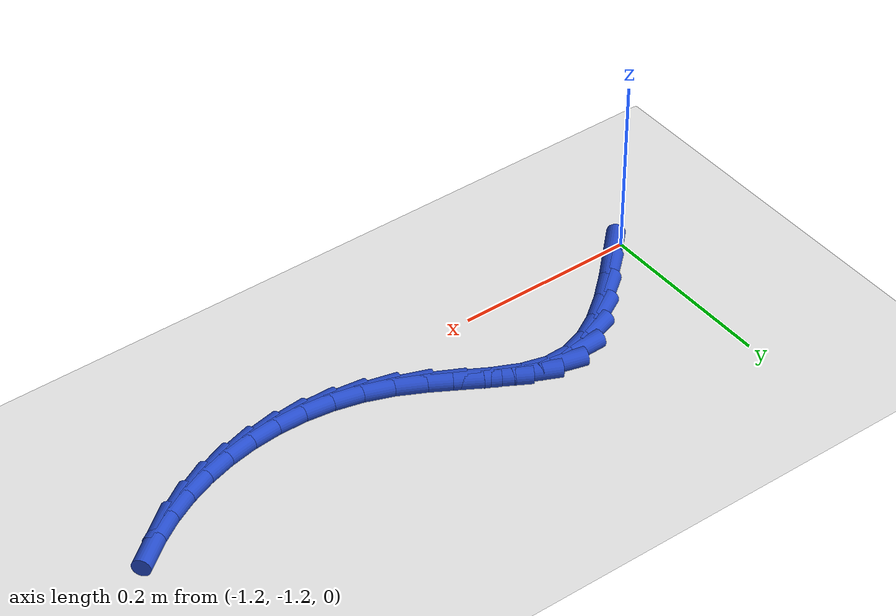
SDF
<sdf version="1.6">
 <world name="default">
  <model name="ground_plane">
   <static>1</static>
   <link name="link">
    <collision name="collision">
     <geometry><plane><normal>0 0 1</normal><size>100 100</size></plane></geometry>
     <surface><friction><ode><mu>100</mu><mu2>50</mu2></ode></friction></surface>
    </collision>
    <visual name="visual">
     <cast_shadows>0</cast_shadows>
     <geometry><plane><normal>0 0 1</normal><size>100 100</size></plane></geometry>
     <material>
      <script><uri>file://media/materials/scripts/gazebo.material</uri><name>Gazebo/WhiteGlow</name></script>
     </material>
    </visual>
   </link>
  </model>
  <model name="line">
   <link name="link_197">
    <pose>-1.1725462973427259 -1.1823438609646186 0.01 0 1.57 0.7769176367774766</pose>
    <collision name="collision">
     <geometry><cylinder><radius>0.01</radius><length>0.08</length></cylinder></geometry>
    </collision>
    <visual name="visual">
     <material>
      <script><name>Gazebo/Blue</name><uri>file://media/materials/scripts/gazebo.material</uri></script>
     </material>
     <geometry><cylinder><radius>0.01</radius><length>0.08</length></cylinder></geometry>
    </visual>
   </link>
   <link name="link_198">
    <pose>-1.1467645299513411 -1.156995712580293 0.01 0 1.57 0.7331379132344182</pose>
    <collision name="collision">
     <geometry><cylinder><radius>0.01</radius><length>0.08</length></cylinder></geometry>
    </collision>
    <visual name="visual">
     <material>
      <script><name>Gazebo/Blue</name><uri>file://media/materials/scripts/gazebo.material</uri></script>
     </material>
     <geometry><cylinder><radius>0.01</radius><length>0.08</length></cylinder></geometry>
    </visual>
   </link>
   <link name="link_199">
    <pose>-1.1207682063633124 -1.133583827577635 0.01 0 1.57 0.6516789785966732</pose>
    <collision name="collision">
     <geometry><cylinder><radius>0.01</radius><length>0.08</length></cylinder></geometry>
    </collision>
    <visual name="visual">
     <material>
      <script><name>Gazebo/Blue</name><uri>file://media/materials/scripts/gazebo.material</uri></script>
     </material>
     <geometry><cylinder><radius>0.01</radius><length>0.08</length></cylinder></geometry>
    </visual>
   </link>
   <link name="link_200">
    <pose>-1.094581846570997 -1.1136073779839863 0.01 0 1.57 0.5186776162170759</pose>
    <collision name="collision">
     <geometry><cylinder><radius>0.01</radius><length>0.08</length></cylinder></geometry>
    </collision>
    <visual name="visual">
     <material>
      <script><name>Gazebo/Blue</name><uri>file://media/materials/scripts/gazebo.material</uri></script>
     </material>
     <geometry><cylinder><radius>0.01</radius><length>0.08</length></cylinder></geometry>
    </visual>
   </link>
   <link name="link_201">
    <pose>-1.0682299705667528 -1.0985655358266877 0.01 0 1.57 0.3141594940497612</pose>
    <collision name="collision">
     <geometry><cylinder><radius>0.01</radius><length>0.08</length></cylinder></geometry>
    </collision>
    <visual name="visual">
     <material>
      <script><name>Gazebo/Blue</name><uri>file://media/materials/scripts/gazebo.material</uri></script>
     </material>
     <geometry><cylinder><radius>0.01</radius><length>0.08</length></cylinder></geometry>
    </visual>
   </link>
   <link name="link_202">
    <pose>-1.0417370983429366 -1.0899574731330806 0.01 0 1.57 0.026552235999757437</pose>
    <collision name="collision">
     <geometry><cylinder><radius>0.01</radius><length>0.08</length></cylinder></geometry>
    </collision>
    <visual name="visual">
     <material>
      <script><name>Gazebo/Blue</name><uri>file://media/materials/scripts/gazebo.material</uri></script>
     </material>
     <geometry><cylinder><radius>0.01</radius><length>0.08</length></cylinder></geometry>
    </visual>
   </link>
   <link name="link_203">
    <pose>-1.0151260289880946 -1.089250723640424 0.01 0 1.57 -0.2602488342536156</pose>
    <collision name="collision">
     <geometry><cylinder><radius>0.01</radius><length>0.08</length></cylinder></geometry>
    </collision>
    <visual name="visual">
     <material>
      <script><name>Gazebo/Blue</name><uri>file://media/materials/scripts/gazebo.material</uri></script>
     </material>
     <geometry><cylinder><radius>0.01</radius><length>0.08</length></cylinder></geometry>
    </visual>
   </link>
   <link name="link_204">
    <pose>-0.9883364300125059 -1.096384472452593 0.01 0 1.57 -0.43865839432295795</pose>
    <collision name="collision">
     <geometry><cylinder><radius>0.01</radius><length>0.08</length></cylinder></geometry>
    </collision>
    <visual name="visual">
     <material>
      <script><name>Gazebo/Blue</name><uri>file://media/materials/scripts/gazebo.material</uri></script>
     </material>
     <geometry><cylinder><radius>0.01</radius><length>0.08</length></cylinder></geometry>
    </visual>
   </link>
   <link name="link_205">
    <pose>-0.9611895193238175 -1.1091202449671993 0.01 0 1.57 -0.5220990378310564</pose>
    <collision name="collision">
     <geometry><cylinder><radius>0.01</radius><length>0.08</length></cylinder></geometry>
    </collision>
    <visual name="visual">
     <material>
      <script><name>Gazebo/Blue</name><uri>file://media/materials/scripts/gazebo.material</uri></script>
     </material>
     <geometry><cylinder><radius>0.01</radius><length>0.08</length></cylinder></geometry>
    </visual>
   </link>
   <link name="link_206">
    <pose>-0.9334974515607687 -1.1250529411558177 0.01 0 1.57 -0.531825739977138</pose>
    <collision name="collision">
     <geometry><cylinder><radius>0.01</radius><length>0.08</length></cylinder></geometry>
    </collision>
    <visual name="visual">
     <material>
      <script><name>Gazebo/Blue</name><uri>file://media/materials/scripts/gazebo.material</uri></script>
     </material>
     <geometry><cylinder><radius>0.01</radius><length>0.08</length></cylinder></geometry>
    </visual>
   </link>
   <link name="link_207">
    <pose>-0.9050723813621001 -1.141777460990024 0.01 0 1.57 -0.47552418243377503</pose>
    <collision name="collision">
     <geometry><cylinder><radius>0.01</radius><length>0.08</length></cylinder></geometry>
    </collision>
    <visual name="visual">
     <material>
      <script><name>Gazebo/Blue</name><uri>file://media/materials/scripts/gazebo.material</uri></script>
     </material>
     <geometry><cylinder><radius>0.01</radius><length>0.08</length></cylinder></geometry>
    </visual>
   </link>
   <link name="link_208">
    <pose>-0.875726463366552 -1.1568887044413925 0.01 0 1.57 -0.362028117882732</pose>
    <collision name="collision">
     <geometry><cylinder><radius>0.01</radius><length>0.08</length></cylinder></geometry>
    </collision>
    <visual name="visual">
     <material>
      <script><name>Gazebo/Blue</name><uri>file://media/materials/scripts/gazebo.material</uri></script>
     </material>
     <geometry><cylinder><radius>0.01</radius><length>0.08</length></cylinder></geometry>
    </visual>
   </link>
   <link name="link_209">
    <pose>-0.8453541928620919 -1.168391293265418 0.01 0 1.57 -0.24022454765128046</pose>
    <collision name="collision">
     <geometry><cylinder><radius>0.01</radius><length>0.08</length></cylinder></geometry>
    </collision>
    <visual name="visual">
     <material>
      <script><name>Gazebo/Blue</name><uri>file://media/materials/scripts/gazebo.material</uri></script>
     </material>
     <geometry><cylinder><radius>0.01</radius><length>0.08</length></cylinder></geometry>
    </visual>
   </link>
   <link name="link_210">
    <pose>-0.8141983828308821 -1.1760230557003706 0.01 0 1.57 -0.12455534353899324</pose>
    <collision name="collision">
     <geometry><cylinder><radius>0.01</radius><length>0.08</length></cylinder></geometry>
    </collision>
    <visual name="visual">
     <material>
      <script><name>Gazebo/Blue</name><uri>file://media/materials/scripts/gazebo.material</uri></script>
     </material>
     <geometry><cylinder><radius>0.01</radius><length>0.08</length></cylinder></geometry>
    </visual>
   </link>
   <link name="link_211">
    <pose>-0.782593934025546 -1.1799800428178895 0.01 0 1.57 -0.01507745232673124</pose>
    <collision name="collision">
     <geometry><cylinder><radius>0.01</radius><length>0.08</length></cylinder></geometry>
    </collision>
    <visual name="visual">
     <material>
      <script><name>Gazebo/Blue</name><uri>file://media/materials/scripts/gazebo.material</uri></script>
     </material>
     <geometry><cylinder><radius>0.01</radius><length>0.08</length></cylinder></geometry>
    </visual>
   </link>
   <link name="link_212">
    <pose>-0.7508757477637042 -1.1804583085010025 0.01 0 1.57 0.08880287674068593</pose>
    <collision name="collision">
     <geometry><cylinder><radius>0.01</radius><length>0.08</length></cylinder></geometry>
    </collision>
    <visual name="visual">
     <material>
      <script><name>Gazebo/Blue</name><uri>file://media/materials/scripts/gazebo.material</uri></script>
     </material>
     <geometry><cylinder><radius>0.01</radius><length>0.08</length></cylinder></geometry>
    </visual>
   </link>
   <link name="link_213">
    <pose>-0.7193787253629761 -1.1776539066327378 0.01 0 1.57 0.18814353005631218</pose>
    <collision name="collision">
     <geometry><cylinder><radius>0.01</radius><length>0.08</length></cylinder></geometry>
    </collision>
    <visual name="visual">
     <material>
      <script><name>Gazebo/Blue</name><uri>file://media/materials/scripts/gazebo.material</uri></script>
     </material>
     <geometry><cylinder><radius>0.01</radius><length>0.08</length></cylinder></geometry>
    </visual>
   </link>
   <link name="link_214">
    <pose>-0.688437768140984 -1.1717628910961237 0.01 0 1.57 0.2843152384080169</pose>
    <collision name="collision">
     <geometry><cylinder><radius>0.01</radius><length>0.08</length></cylinder></geometry>
    </collision>
    <visual name="visual">
     <material>
      <script><name>Gazebo/Blue</name><uri>file://media/materials/scripts/gazebo.material</uri></script>
     </material>
     <geometry><cylinder><radius>0.01</radius><length>0.08</length></cylinder></geometry>
    </visual>
   </link>
   <link name="link_215">
    <pose>-0.6583877774153472 -1.1629813157741888 0.01 0 1.57 0.3789032465633506</pose>
    <collision name="collision">
     <geometry><cylinder><radius>0.01</radius><length>0.08</length></cylinder></geometry>
    </collision>
    <visual name="visual">
     <material>
      <script><name>Gazebo/Blue</name><uri>file://media/materials/scripts/gazebo.material</uri></script>
     </material>
     <geometry><cylinder><radius>0.01</radius><length>0.08</length></cylinder></geometry>
    </visual>
   </link>
   <link name="link_216">
    <pose>-0.6295636545036865 -1.1515052345499606 0.01 0 1.57 0.47358050250691874</pose>
    <collision name="collision">
     <geometry><cylinder><radius>0.01</radius><length>0.08</length></cylinder></geometry>
    </collision>
    <visual name="visual">
     <material>
      <script><name>Gazebo/Blue</name><uri>file://media/materials/scripts/gazebo.material</uri></script>
     </material>
     <geometry><cylinder><radius>0.01</radius><length>0.08</length></cylinder></geometry>
    </visual>
   </link>
   <link name="link_217">
    <pose>-0.6022958297616965 -1.1375310605983997 0.01 0 1.57 0.5662152698309373</pose>
    <collision name="collision">
     <geometry><cylinder><radius>0.01</radius><length>0.08</length></cylinder></geometry>
    </collision>
    <visual name="visual">
     <material>
      <script><name>Gazebo/Blue</name><uri>file://media/materials/scripts/gazebo.material</uri></script>
     </material>
     <geometry><cylinder><radius>0.01</radius><length>0.08</length></cylinder></geometry>
    </visual>
   </link>
   <link name="link_218">
    <pose>-0.5767156172149248 -1.1212712083246485 0.01 0 1.57 0.6510297807328014</pose>
    <collision name="collision">
     <geometry><cylinder><radius>0.01</radius><length>0.08</length></cylinder></geometry>
    </collision>
    <visual name="visual">
     <material>
      <script><name>Gazebo/Blue</name><uri>file://media/materials/scripts/gazebo.material</uri></script>
     </material>
     <geometry><cylinder><radius>0.01</radius><length>0.08</length></cylinder></geometry>
    </visual>
   </link>
  </model>
 </world>
</sdf>
